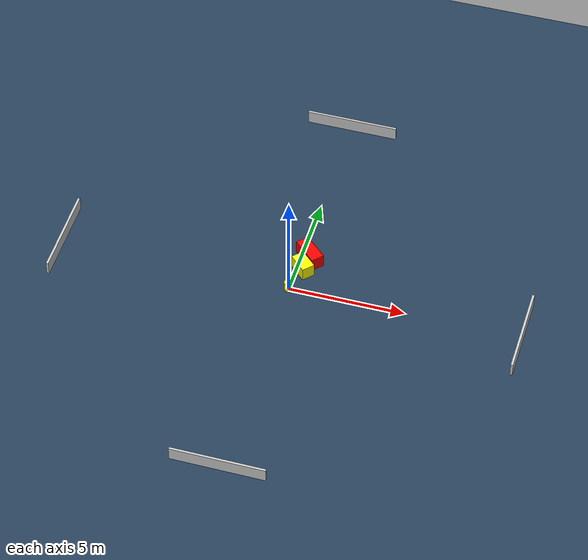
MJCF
<?xml version="1.0" ?>
<mujoco model="generated_environment">
  <option timestep="0.01" integrator="RK4" cone="elliptic"/>
  <default>
    <geom density="1"/>
  </default>
  <asset>
    <texture builtin="gradient" height="3072" name="skybox" rgb1="0.3 0.5 0.7" rgb2="0 0 0" type="skybox" width="512"/>
    <texture builtin="checker" height="300" name="groundplane" rgb1="0.2 0.3 0.4" rgb2="0.1 0.2 0.3" type="2d" width="300"/>
    <material name="groundplane" reflectance="0.2" texrepeat="5 5" texture="groundplane"/>
  </asset>
  <worldbody>
    <light dir="0 0 -1" directional="true" pos="0 0 1.5"/>
    <geom condim="3" friction="0.5 0.005 0.001" material="groundplane" name="floor" pos="0 0 0" size="0 0 0.05" type="plane"/>
    <body name="walls">
      <geom name="wall_1" condim="4" pos="-10.0 0.0 0.3" rgba="0.800000011920929 0.800000011920929 0.800000011920929 1.0" size="0.05 2.0 0.3" type="box"/>
      <geom name="wall_2" condim="4" pos="10.0 0.0 0.3" rgba="0.800000011920929 0.800000011920929 0.800000011920929 1.0" size="0.05 2.0 0.3" type="box"/>
      <geom name="wall_3" condim="4" pos="0.0 -10.0 0.3" rgba="0.800000011920929 0.800000011920929 0.800000011920929 1.0" size="2.0 0.05 0.3" type="box"/>
      <geom name="wall_4" condim="4" pos="0.0 10.0 0.3" rgba="0.800000011920929 0.800000011920929 0.800000011920929 1.0" size="2.0 0.05 0.3" type="box"/>
    </body>
    <body name="robot">
      <joint name="joint_x" type="slide" pos="0 0 0" axis="1 0 0"/>
      <joint name="joint_y" type="slide" pos="0 0 0" axis="0 1 0"/>
      <geom name="robot" type="cylinder" pos="0.0 0.0 0.2" size="0.2 0.2 0.0" mass="5.0" friction="1.0 0.005 0.0001" condim="4" rgba="1.0 1.0 0.0 1.0"/>
    </body>
    <body name="obstacle_1_movable">
      <geom name="obstacle_1_movable" condim="4" pos="0.2680073045782431 1.1739690405038639 0.3" euler="0 0 316.1733327197578" friction="0.0 0.005 0.001" rgba="1.0 1.0 0.0 1.0" size="0.45722232555224673 0.28604303343112136 0.3" type="box" mass="0.1"/>
      <joint type="free"/>
    </body>
    <body name="obstacle_2_static">
      <geom name="obstacle_2_static" condim="4" pos="0.3608332485076458 1.9198965234771228 0.3" euler="0 0 137.09365376410352" friction="0.0 0.005 0.001" rgba="1.0 0.0 0.0 1.0" size="0.6409827184693841 0.289365320964233 0.3" type="box"/>
    </body>
  </worldbody>
  <actuator>
    <motor name="actuator_x" joint="joint_x" gear="1" ctrlrange="-1 1"/>
    <motor name="actuator_y" joint="joint_y" gear="1" ctrlrange="-1 1"/>
  </actuator>
</mujoco>
